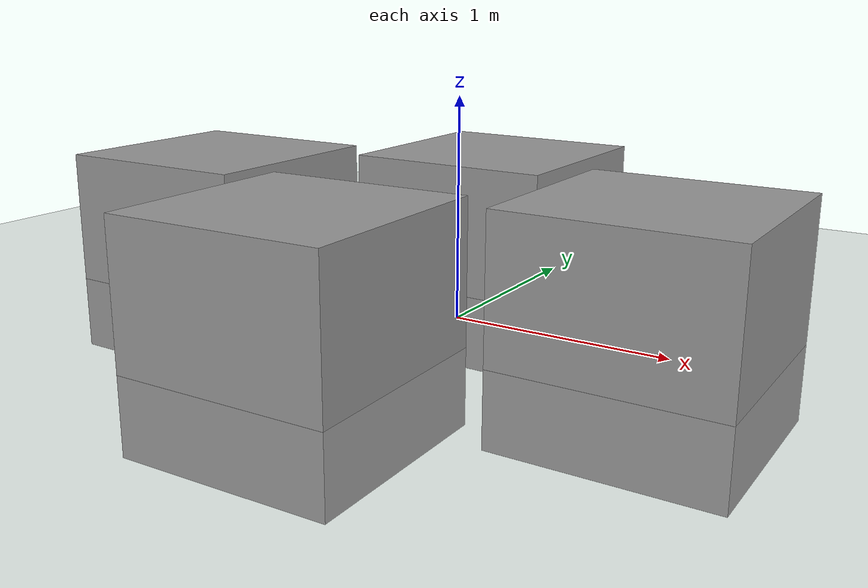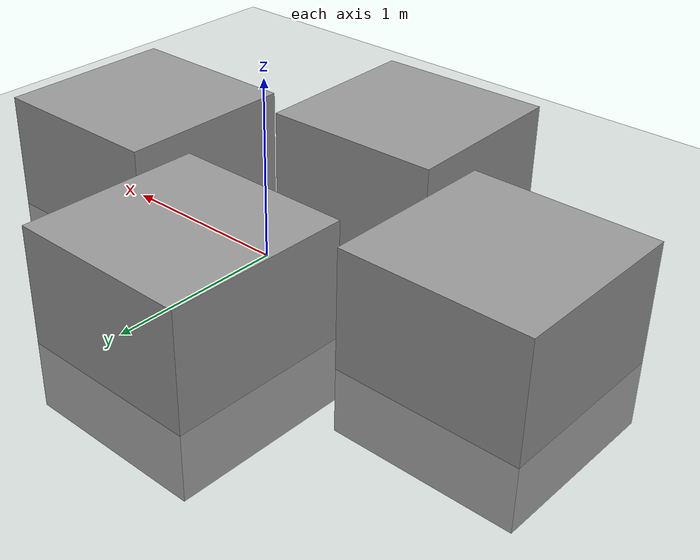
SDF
<sdf version="1.4">
 <world name="default">
  <light name="sun" type="directional">
   <pose>0 0 10 0 -0 0</pose>
   <diffuse>0.8 0.8 0.8 1</diffuse>
   <specular>0.2 0.2 0.2 1</specular>
   <attenuation>
    <range>1000</range>
    <constant>0.9</constant>
    <linear>0.01</linear>
    <quadratic>0.001</quadratic>
   </attenuation>
   <direction>0.5 0.1 -0.9</direction>
  </light>
  <scene><ambient>0.4 0.4 0.4 1</ambient><background>0.7 0.7 0.7 1</background><shadows>1</shadows></scene>
  <physics type="ode">
   <max_step_size>0.01</max_step_size>
   <real_time_factor>1</real_time_factor>
   <real_time_update_rate>100</real_time_update_rate>
   <gravity>0 0 -9.8</gravity>
  </physics>
  <model name="ground_plane_0">
   <static>1</static>
   <link name="link">
    <collision name="collision">
     <geometry><plane><normal>0 0 1</normal><size>100 100</size></plane></geometry>
     <surface><friction><ode><mu>100</mu><mu2>50</mu2></ode></friction></surface>
    </collision>
    <visual name="visual">
     <cast_shadows>0</cast_shadows>
     <geometry><plane><normal>0 0 1</normal><size>100 100</size></plane></geometry>
     <material>
      <script><uri>file://media/materials/scripts/gazebo.material</uri><name>Gazebo/Grey</name></script>
     </material>
    </visual>
    <velocity_decay><linear>0</linear><angular>0</angular></velocity_decay>
   </link>
   <pose>0.497681 0 0 0 -0 0</pose>
  </model>
  <spherical_coordinates>
   <surface_model>EARTH_WGS84</surface_model>
   <latitude_deg>0</latitude_deg>
   <longitude_deg>0</longitude_deg>
   <elevation>0</elevation>
   <heading_deg>0</heading_deg>
  </spherical_coordinates>
  <model name="unit_box_3">
   <pose>-1.4264 0.00927 0.139037 -1e-06 1.5e-05 -0.005097</pose>
   <link name="link">
    <inertial>
     <mass>1</mass>
     <inertia><ixx>1</ixx><ixy>0</ixy><ixz>0</ixz><iyy>1</iyy><iyz>0</iyz><izz>1</izz></inertia>
    </inertial>
    <collision name="collision"><geometry><box><size>0.185308 1.4093 0.27983</size></box></geometry></collision>
    <visual name="visual">
     <geometry><box><size>1 1 1</size></box></geometry>
     <material>
      <script><uri>file://media/materials/scripts/gazebo.material</uri><name>Gazebo/Grey</name></script>
     </material>
    </visual>
    <velocity_decay><linear>0</linear><angular>0</angular></velocity_decay>
   </link>
   <static>0</static>
  </model>
  <model name="unit_box_4">
   <pose>-0.262609 0.804538 0.130909 -2.3e-05 0.000699 -0.008606</pose>
   <link name="link">
    <inertial>
     <mass>1</mass>
     <inertia><ixx>1</ixx><ixy>0</ixy><ixz>0</ixz><iyy>1</iyy><iyz>0</iyz><izz>1</izz></inertia>
    </inertial>
    <collision name="collision"><geometry><box><size>2.49854 0.156419 0.263558</size></box></geometry></collision>
    <visual name="visual">
     <geometry><box><size>1 1 1</size></box></geometry>
     <material>
      <script><uri>file://media/materials/scripts/gazebo.material</uri><name>Gazebo/Grey</name></script>
     </material>
    </visual>
    <velocity_decay><linear>0</linear><angular>0</angular></velocity_decay>
   </link>
   <static>0</static>
  </model>
  <model name="unit_box_5">
   <pose>-0.258485 -0.827353 0.144712 2.1e-05 -0.000704 0.020043</pose>
   <link name="link">
    <inertial>
     <mass>1</mass>
     <inertia><ixx>1</ixx><ixy>0</ixy><ixz>0</ixz><iyy>1</iyy><iyz>0</iyz><izz>1</izz></inertia>
    </inertial>
    <collision name="collision"><geometry><box><size>2.51273 0.20192 0.291184</size></box></geometry></collision>
    <visual name="visual">
     <geometry><box><size>1 1 1</size></box></geometry>
     <material>
      <script><uri>file://media/materials/scripts/gazebo.material</uri><name>Gazebo/Grey</name></script>
     </material>
    </visual>
    <velocity_decay><linear>0</linear><angular>0</angular></velocity_decay>
   </link>
   <static>0</static>
  </model>
  <model name="unit_box_6">
   <pose>0.916282 -0 0.147473 2e-06 -2.9e-05 -6.46235e-27</pose>
   <link name="link">
    <inertial>
     <mass>1</mass>
     <inertia><ixx>1</ixx><ixy>0</ixy><ixz>0</ixz><iyy>1</iyy><iyz>0</iyz><izz>1</izz></inertia>
    </inertial>
    <collision name="collision"><geometry><box><size>0.149517 1.38374 0.296699</size></box></geometry></collision>
    <visual name="visual">
     <geometry><box><size>1 1 1</size></box></geometry>
     <material>
      <script><uri>file://media/materials/scripts/gazebo.material</uri><name>Gazebo/Grey</name></script>
     </material>
    </visual>
    <velocity_decay><linear>0</linear><angular>0</angular></velocity_decay>
   </link>
   <static>0</static>
  </model>
 </world>
</sdf>
